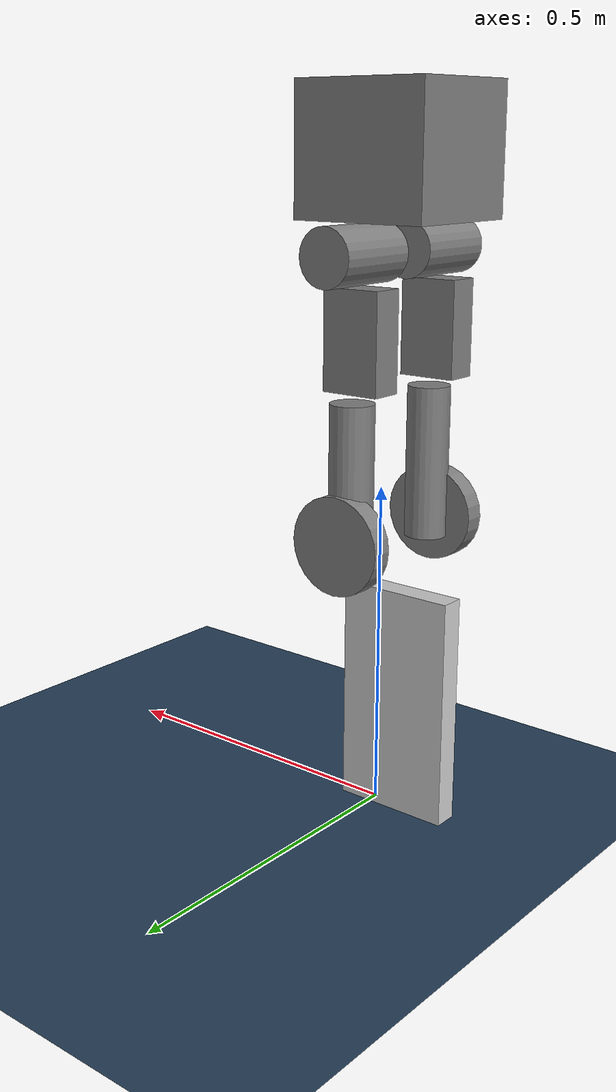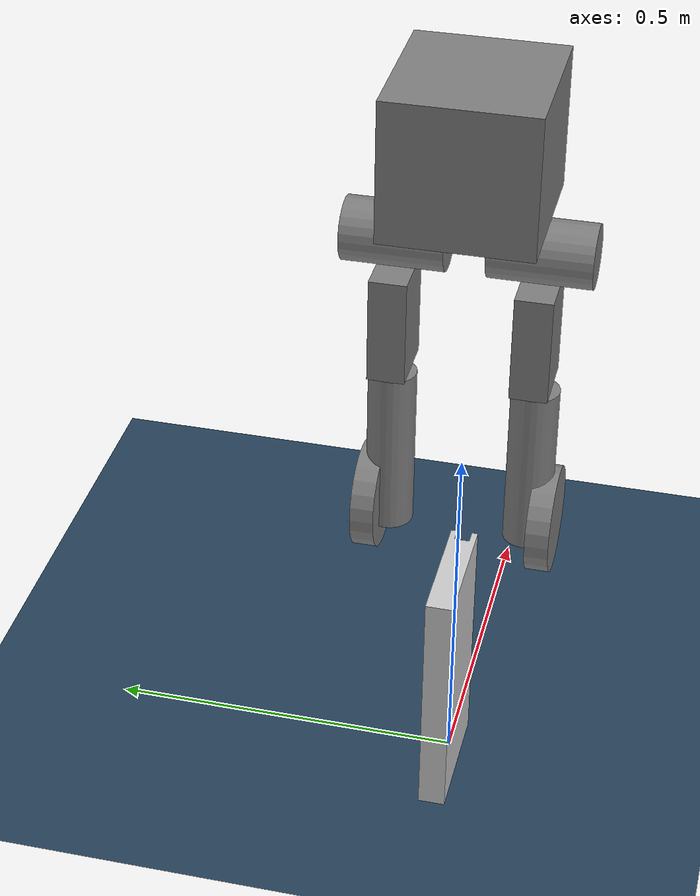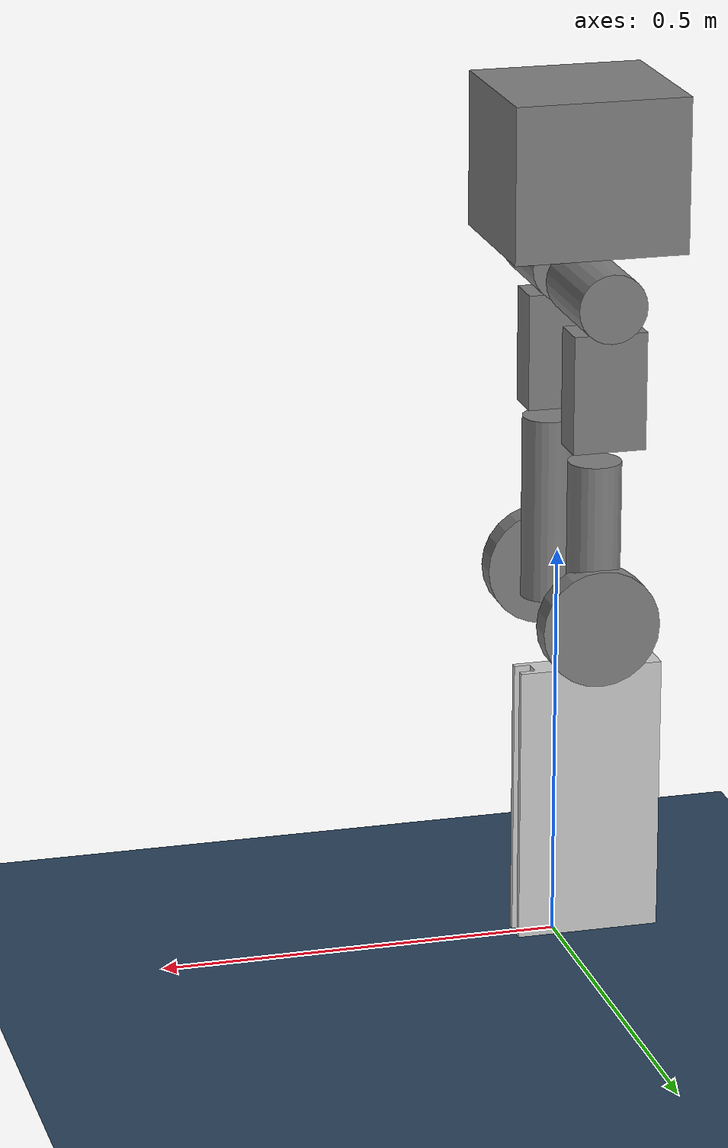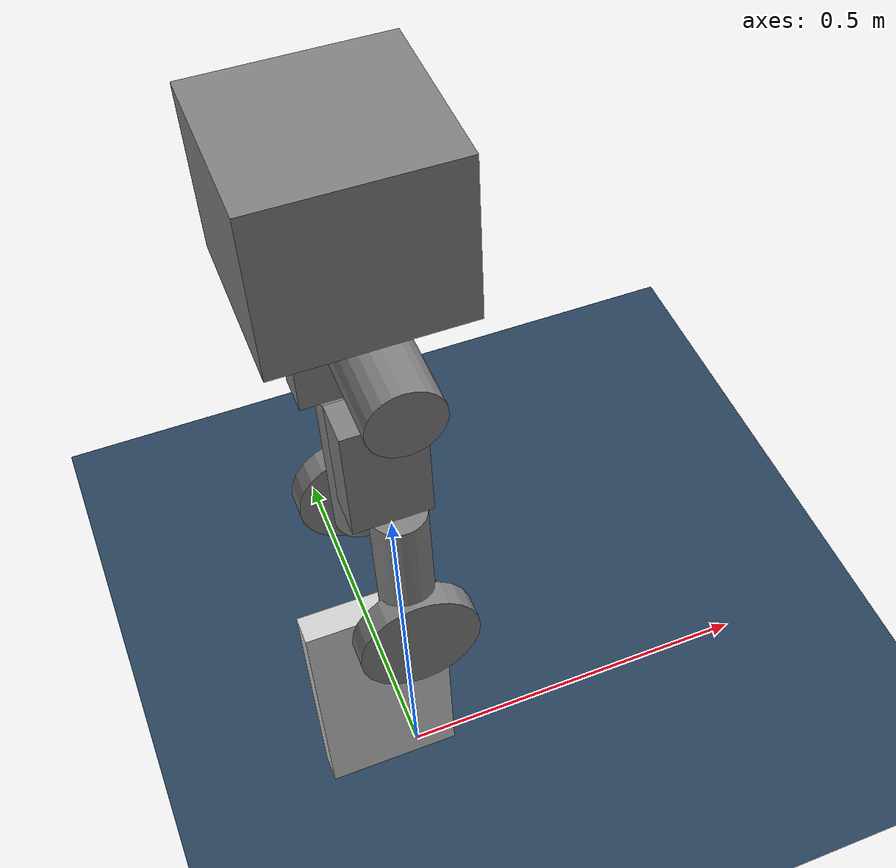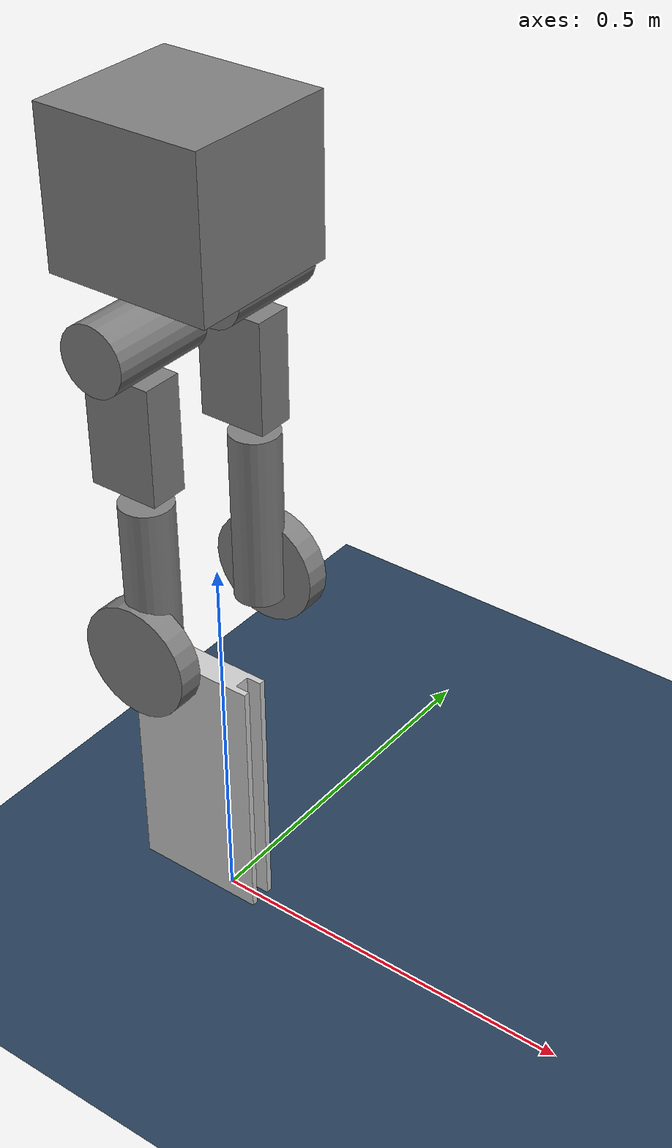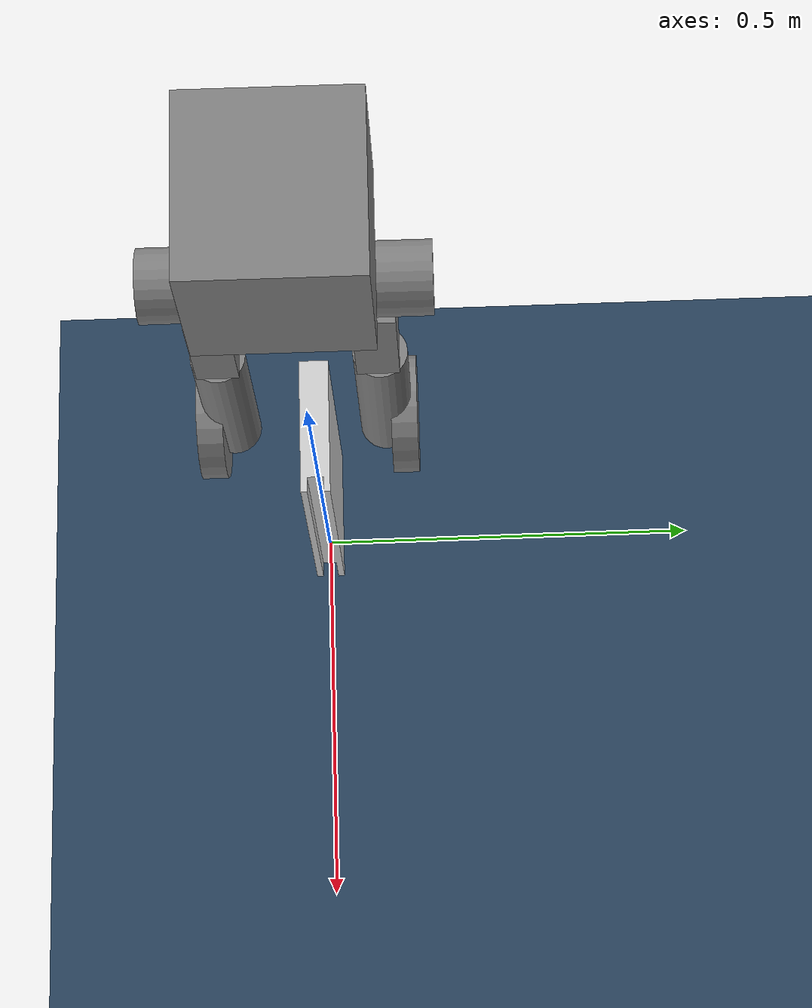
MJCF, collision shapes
<mujoco model="GOAT_on_Stand">
    <compiler angle="radian" coordinate="local" meshdir="../meshes/"/>
    <option timestep="0.002" gravity="0 0 -9.81"/>

    <!-- GOAT robot -->
    <include file="./goat_floating.xml"/>

    <!-- Stand jig -->
    <asset>
        <mesh name="jig_mesh" file="GOAT_stand7mm35cm.stl" scale="0.7 1 1"/>
        <material name="jig_material" rgba="0.8 0.8 0.8 1.0"/>
    </asset>

    <worldbody>
        <light pos="0 0 1.5" dir="0 0 -1" directional="true"/>

        <body name="jig_link" pos="-0.04 0 0">
            <inertial pos="0 0 0" mass="10.0" fullinertia="0.05 0.05 0.05 0.0 0.0 0.0"/>
            <geom name="jig_geom" type="mesh" mesh="jig_mesh" material="jig_material"
                  pos="0 0 0" euler="0 0 -1.570796"
                  contype="1" conaffinity="1"/>
        </body>
    </worldbody>

    <!-- Initial pose. -->

    <keyframe>
        <key name="home"
             qpos="0 0 0.46   1 0 0 0   0 1.0942 1.8852 0   0 -1.0942 -1.8852 0"
             qvel="0 0 0     0 0 0     0 0 0 0   0 0 0 0"
             ctrl="0 1.0942 1.8852 0   0 -1.0942 -1.8852 0"/>
    </keyframe>
</mujoco>

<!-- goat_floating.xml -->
<mujoco model="GOAT_Floating">
    <compiler angle="radian" coordinate="local" meshdir="../meshes/" autolimits="true"/>

    <option timestep="0.002" gravity="0 0 -9.81" integrator="implicit" solver="PGS"/>

    <asset>
        <texture  name="groundplane" type="2d" builtin="checker" mark="edge" rgb1="0.2 0.3 0.4" rgb2="0.1 0.2 0.3" markrgb="0.8 0.8 0.8" width="512" height="512"/>
        <material name="groundplane" texture="groundplane" texuniform="true" texrepeat="5 5" reflectance="0.2"/>
    </asset>

    <worldbody>
        <light directional="true" diffuse=".8 .8 .8" specular=".2 .2 .2" pos="0 0 5" dir="0 0 -1"/>
        <geom name="floor" type="plane" size="0 0 1" material="groundplane"/>
    </worldbody>

    <asset>
        <mesh name="base_Link" file="base_Link_simple.stl"/>
        <mesh name="hip_L_Link" file="hip_L_Link.stl"/>
        <mesh name="hip_R_Link" file="hip_R_Link.stl"/>
        <mesh name="thigh_L_Link" file="thigh_L_Link.stl"/>
        <mesh name="thigh_R_Link" file="thigh_R_Link.stl"/>
        <mesh name="calf_L_Link" file="calf_L_Link.stl"/>
        <mesh name="calf_R_Link" file="calf_R_Link.stl"/>
        <mesh name="wheel_L_Link" file="wheel_L_Link.stl"/>
        <mesh name="wheel_R_Link" file="wheel_R_Link.stl"/>

        <material name="orange" rgba="1.0 0.423 0.039 1.0"/>
        <material name="black" rgba="0.792 0.819 0.933 1.0"/>
        <material name="white" rgba="1.0 1.0 1.0 1.0"/>
    </asset>

    <default>
        <joint damping="0.0" frictionloss="0.0"/>
        <geom contype="1" conaffinity="1" friction="0.6 0.1 0.1"/>
        <motor ctrllimited="true"/>
        <position ctrllimited="true"/>
        <velocity ctrllimited="true"/>
    </default>

    <worldbody>
        <body name="base_Link" pos="0 0 1.0">
            <!-- Floating base -->
            <freejoint name="root"/>
            <site name="imu_site" pos="0 0 0" size="0.01" type="sphere" rgba="1 0 0 1"/>

            <inertial pos="-0.009521 0.000016 -0.072346" mass="3.119" fullinertia="0.02028445 0.023476973 0.021206204 -0.000005647 0.006404633 0.000000541"/>
            <geom type="mesh" mesh="base_Link" material="black" pos="-0.1235 0 0.0155" contype="0" conaffinity="0" group="1"/>
            <geom type="box" size="0.107 0.100 0.095" pos="-0.02 0 -0.015" group="3"/>

            <body name="hip_L_Link" pos="0.038386 0.094233 -0.152597">
                <joint name="hip_L_Joint" type="hinge" axis="-1 0 0" range="-1.7453 1.0123" damping="0.0" frictionloss="0.0" armature="0.001"/>
                <inertial pos="-0.048092 -0.038296 -0.000162" mass="0.316" fullinertia="0.000143701 0.000215732 0.000197705 -0.000012808 -0.000001530 -0.000000447"/>
                <geom type="mesh" mesh="hip_L_Link" material="black" contype="0" conaffinity="0" group="1"/>
                <geom type="cylinder" size="0.042 0.0675" pos="-0.0535 0 0" euler="1.57 0 0" group="3"/>

                <body name="thigh_L_Link" pos="-0.054 -0.017 0">
                    <joint name="thigh_L_Joint" type="hinge" axis="0 1 0" range="-0.3840 2.0071" damping="0.0" frictionloss="0.0" armature="0.001"/>
                    <inertial pos="-0.002015 0.042352 -0.035272" mass="0.496" fullinertia="0.003893 0.002945 0.001254 0.000020446085 -0.000110100 0.000343500"/>
                    <geom type="mesh" mesh="thigh_L_Link" material="white" contype="0" conaffinity="0" group="1"/>
                    <geom type="box" size="0.045 0.025 0.0725" pos="-0.011 0.016 -0.116" group="3"/>

                    <body name="calf_L_Link" pos="0 0.018 -0.205">
                        <joint name="knee_L_Joint" type="hinge" axis="0 -1 0" range="-0.523599 2.3387" damping="0.0" frictionloss="0.0" armature="0.001"/>
                        <inertial pos="0.001969 0.000712 -0.160161" mass="0.326" fullinertia="0.009381 0.009422 0.000096695739 0.000000280420 0.000064503362 0.000041025966"/>
                        <geom type="mesh" mesh="calf_L_Link" material="black" contype="0" conaffinity="0" group="1"/>
                        <geom type="cylinder" size="0.0325 0.1165" pos="0 0 -0.116" group="3"/>

                        <body name="wheel_L_Link" pos="0 0.016555 -0.200">
                            <joint name="wheel_L_Joint" type="hinge" axis="0 1 0" damping="0.0" frictionloss="0.0" armature="0.001"/>
                            <inertial pos="0 0.007264 -0.000002" mass="0.239" fullinertia="0.000338788 0.000647488 0.000338791 -0.000000001 -0.000000008 0.000000001"/>
                            <geom type="mesh" mesh="wheel_L_Link" material="orange" contype="0" conaffinity="0" group="1"/>
                            <geom name="wheel_L_collision" type="cylinder" size="0.07275 0.016" pos="0 0.007 0" euler="1.5707963267948966 0 0" group="3"/>
                        </body>
                    </body>
                </body>
            </body>

            <body name="hip_R_Link" pos="0.038386 -0.094233 -0.152597">
                <joint name="hip_R_Joint" type="hinge" axis="-1 0 0" range="-1.0123 1.7453" damping="0.0" frictionloss="0.0" armature="0.001"/>
                <inertial pos="-0.048092 0.038296 -0.000162" mass="0.322" fullinertia="0.000143701 0.000215732 0.000197705 0.000012808 -0.000001530 0.000000447"/>
                <geom type="mesh" mesh="hip_R_Link" material="black" contype="0" conaffinity="0" group="1"/>
                <geom type="cylinder" size="0.042 0.0675" pos="-0.0535 0 0" euler="1.57 0 0" group="3"/>

                <body name="thigh_R_Link" pos="-0.054 0.017 0">
                    <joint name="thigh_R_Joint" type="hinge" axis="0 -1 0" range="-2.0071 0.3840" damping="0.0" frictionloss="0.0" armature="0.001"/>
                    <inertial pos="-0.002015 -0.042352 -0.035272" mass="0.495" fullinertia="0.003893 0.002945 0.001254 -0.000020446085 -0.000110100 -0.000343500"/>
                    <geom type="mesh" mesh="thigh_R_Link" material="white" contype="0" conaffinity="0" group="1"/>
                    <geom type="box" size="0.045 0.025 0.0725" pos="-0.011 -0.016 -0.116" group="3"/>

                    <body name="calf_R_Link" pos="0 -0.018 -0.205">
                        <joint name="knee_R_Joint" type="hinge" axis="0 1 0" range="-2.3387 0.523599" damping="0.0" frictionloss="0.0" armature="0.001"/>
                        <inertial pos="0.001969 -0.000712 -0.160161" mass="0.327" fullinertia="0.009381 0.009422 0.000096695739 -0.000000280420 0.000064503362 -0.000041025966"/>
                        <geom type="mesh" mesh="calf_R_Link" material="black" contype="0" conaffinity="0" group="1"/>
                        <geom type="cylinder" size="0.0325 0.1165" pos="0 0 -0.116" group="3"/>

                        <body name="wheel_R_Link" pos="0 -0.016555 -0.200">
                            <joint name="wheel_R_Joint" type="hinge" axis="0 -1 0" damping="0.0" frictionloss="0.0" armature="0.001"/>
                            <inertial pos="0 -0.007264 -0.000002" mass="0.217" fullinertia="0.000338788 0.000647488 0.000338791 0.000000001 -0.000000008 -0.000000001"/>
                            <geom type="mesh" mesh="wheel_R_Link" material="orange" contype="0" conaffinity="0" group="1"/>
                            <geom name="wheel_R_collision" type="cylinder" size="0.07275 0.016" pos="0 -0.007 0" euler="1.5707963267948966 0 0" group="3"/>
                        </body>
                    </body>
                </body>
            </body>
        </body>
    </worldbody>

    <contact>
        <exclude body1="base_Link"    body2="hip_L_Link"/>
        <exclude body1="base_Link"    body2="hip_R_Link"/>
        <exclude body1="base_Link"    body2="thigh_L_Link"/>
        <exclude body1="base_Link"    body2="thigh_R_Link"/>
        <exclude body1="base_Link"    body2="calf_L_Link"/>
        <exclude body1="base_Link"    body2="calf_R_Link"/>
        <exclude body1="base_Link"    body2="wheel_L_Link"/>
        <exclude body1="base_Link"    body2="wheel_R_Link"/>
        <exclude body1="hip_L_Link"   body2="hip_R_Link"/>
        <exclude body1="hip_L_Link"   body2="thigh_R_Link"/>
        <exclude body1="hip_L_Link"   body2="calf_L_Link"/>
        <exclude body1="hip_L_Link"   body2="calf_R_Link"/>
        <exclude body1="hip_L_Link"   body2="wheel_L_Link"/>
        <exclude body1="hip_L_Link"   body2="wheel_R_Link"/>
        <exclude body1="hip_R_Link"   body2="thigh_L_Link"/>
        <exclude body1="hip_R_Link"   body2="calf_L_Link"/>
        <exclude body1="hip_R_Link"   body2="calf_R_Link"/>
        <exclude body1="hip_R_Link"   body2="wheel_L_Link"/>
        <exclude body1="hip_R_Link"   body2="wheel_R_Link"/>
        <exclude body1="thigh_L_Link" body2="thigh_R_Link"/>
        <exclude body1="thigh_L_Link" body2="calf_R_Link"/>
        <exclude body1="thigh_L_Link" body2="wheel_L_Link"/>
        <exclude body1="thigh_L_Link" body2="wheel_R_Link"/>
        <exclude body1="thigh_R_Link" body2="calf_L_Link"/>
        <exclude body1="thigh_R_Link" body2="wheel_L_Link"/>
        <exclude body1="thigh_R_Link" body2="wheel_R_Link"/>
        <exclude body1="calf_L_Link"  body2="calf_R_Link"/>
        <exclude body1="calf_L_Link"  body2="wheel_R_Link"/>
        <exclude body1="calf_R_Link"  body2="wheel_L_Link"/>
        <exclude body1="wheel_L_Link" body2="wheel_R_Link"/>
    </contact>

    <!-- Position-based actuator -->
    <actuator>
        <position name="hip_L_Joint"   joint="hip_L_Joint"   kp="3.0" kv="0.5"   ctrllimited="true" ctrlrange="-1.7453 1.0123"   forcelimited="true" forcerange="-4.5 4.5"/>
        <position name="thigh_L_Joint" joint="thigh_L_Joint" kp="3.0" kv="0.5"   ctrllimited="true" ctrlrange="-0.3840 2.0071"   forcelimited="true" forcerange="-4.5 4.5"/>
        <position name="knee_L_Joint"  joint="knee_L_Joint"  kp="3.0" kv="0.5"   ctrllimited="true" ctrlrange="-0.523599 2.3387" forcelimited="true" forcerange="-9.0 9.0"/>
        <velocity name="wheel_L_Joint" joint="wheel_L_Joint" kv="0.05"           ctrllimited="true" ctrlrange="-15.0 15.0"       forcelimited="true" forcerange="-2.5 2.5"/>
        <position name="hip_R_Joint"   joint="hip_R_Joint"   kp="3.0" kv="0.5"   ctrllimited="true" ctrlrange="-1.0123 1.7453"   forcelimited="true" forcerange="-4.5 4.5"/>
        <position name="thigh_R_Joint" joint="thigh_R_Joint" kp="3.0" kv="0.5"   ctrllimited="true" ctrlrange="-2.0071 0.3840"   forcelimited="true" forcerange="-4.5 4.5"/>
        <position name="knee_R_Joint"  joint="knee_R_Joint"  kp="3.0" kv="0.5"   ctrllimited="true" ctrlrange="-2.3387 0.523599" forcelimited="true" forcerange="-9.0 9.0"/>
        <velocity name="wheel_R_Joint" joint="wheel_R_Joint" kv="0.05"           ctrllimited="true" ctrlrange="-15.0 15.0"       forcelimited="true" forcerange="-2.5 2.5"/>
    </actuator>

    <sensor>
        <framequat name="imu_quat" objtype="site" objname="imu_site"/>
        <accelerometer name="imu_acc" site="imu_site"/>
        <gyro name="imu_gyro" site="imu_site"/>
        <magnetometer name="imu_mag" site="imu_site"/>
    </sensor>

</mujoco>
